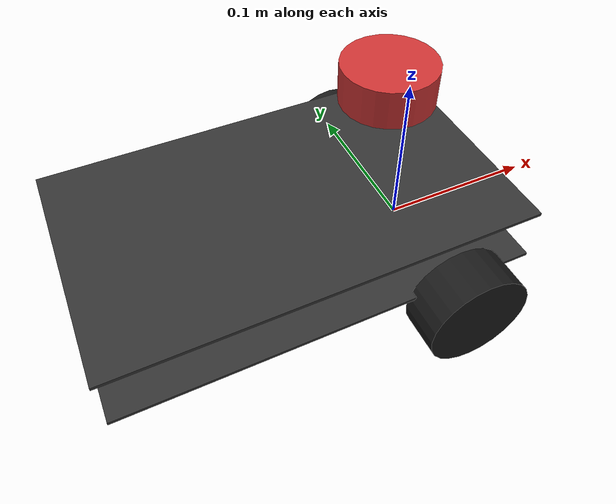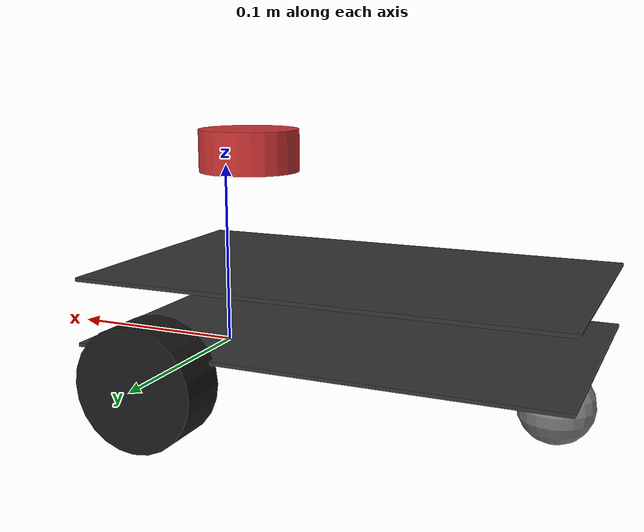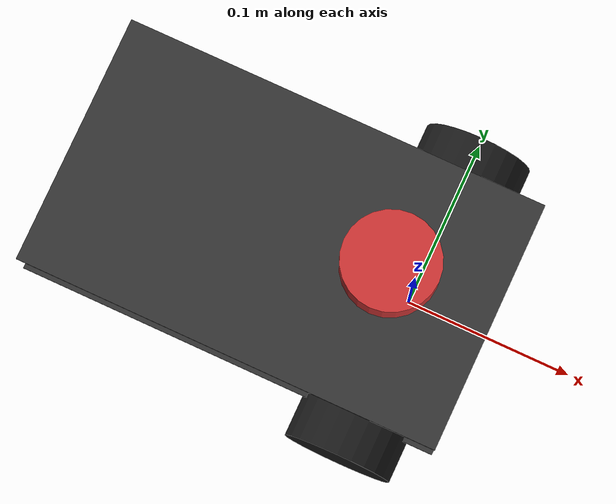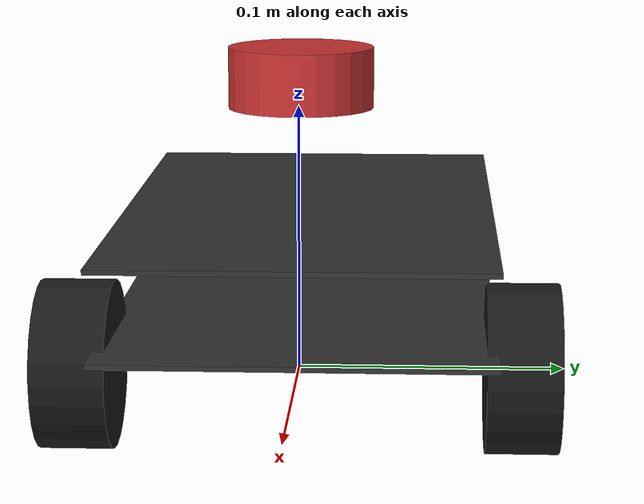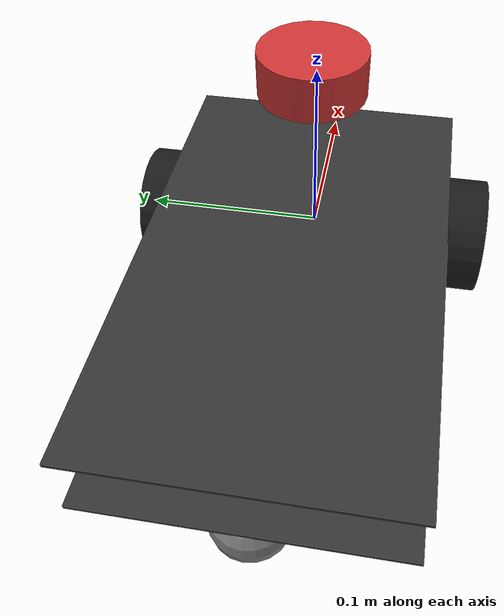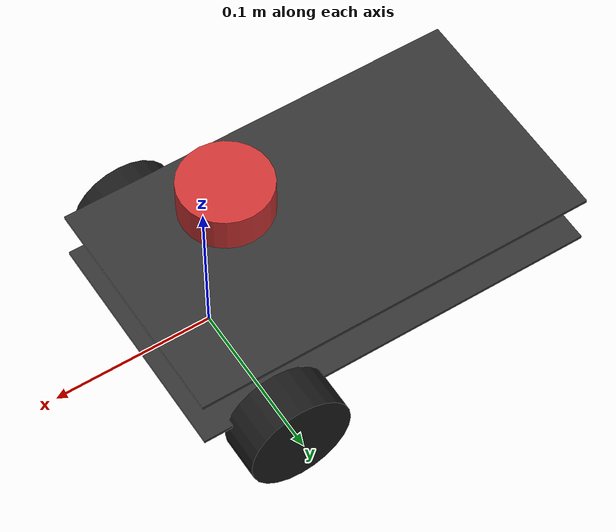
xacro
<?xml version="1.0"?>
<robot xmlns:xacro="http://www.ros.org/wiki/xacro" name="gez">

  <!-- =========== MATERIALS =========== -->
  <material name="sasi_renk">
    <color rgba="0.2 0.2 0.2 1.0"/>
  </material>
  <material name="tekerlek_renk">
    <color rgba="0.1 0.1 0.1 1.0"/>
  </material>
  <material name="lidar_renk">
    <color rgba="0.8 0.2 0.2 1.0"/>
  </material>
  <material name="sarhos_renk">
    <color rgba="0.5 0.5 0.5 1.0"/>
  </material>

  <!-- =========== BASE LINK (sanal merkez) =========== -->
  <link name="base_link"/>

  <!-- =========== ALT SASE =========== -->
  <link name="sase1">
    <visual>
      <geometry>
        <box size="0.255 0.150 0.002"/>
      </geometry>
      <material name="sasi_renk"/>
    </visual>
    <collision>
      <geometry>
        <box size="0.255 0.150 0.002"/>
      </geometry>
    </collision>
  </link>
  <joint name="sase1_joint" type="fixed">
    <parent link="base_link"/>
    <child link="sase1"/>
    <origin xyz="-0.0795 0 0.0115" rpy="0 0 0"/>
  </joint>

  <!-- =========== UST SASE =========== -->
  <link name="sase2">
    <visual>
      <geometry>
        <box size="0.255 0.150 0.002"/>
      </geometry>
      <material name="sasi_renk"/>
    </visual>
    <collision>
      <geometry>
        <box size="0.255 0.150 0.002"/>
      </geometry>
    </collision>
  </link>
  <joint name="sase2_joint" type="fixed">
    <parent link="base_link"/>
    <child link="sase2"/>
    <origin xyz="-0.0795 0 0.0465" rpy="0 0 0"/>
  </joint>

  <!-- =========== SOL TEKERLEK =========== -->
  <link name="sol_tekerlek">
    <visual>
      <geometry>
        <cylinder radius="0.0325" length="0.028"/>
      </geometry>
      <material name="tekerlek_renk"/>
      <origin xyz="0 0 0" rpy="1.5708 0 0"/>
    </visual>
    <collision>
      <geometry>
        <cylinder radius="0.0325" length="0.028"/>
      </geometry>
      <origin xyz="0 0 0" rpy="1.5708 0 0"/>
    </collision>
  </link>
  <joint name="sol_tekerlek_joint" type="continuous">
    <parent link="base_link"/>
    <child link="sol_tekerlek"/>
    <origin xyz="0 0.0845 0" rpy="0 0 0"/>
    <axis xyz="0 1 0"/>
  </joint>

  <!-- =========== SAG TEKERLEK =========== -->
  <link name="sag_tekerlek">
    <visual>
      <geometry>
        <cylinder radius="0.0325" length="0.028"/>
      </geometry>
      <material name="tekerlek_renk"/>
      <origin xyz="0 0 0" rpy="1.5708 0 0"/>
    </visual>
    <collision>
      <geometry>
        <cylinder radius="0.0325" length="0.028"/>
      </geometry>
      <origin xyz="0 0 0" rpy="1.5708 0 0"/>
    </collision>
  </link>
  <joint name="sag_tekerlek_joint" type="continuous">
    <parent link="base_link"/>
    <child link="sag_tekerlek"/>
    <origin xyz="0 -0.0845 0" rpy="0 0 0"/>
    <axis xyz="0 1 0"/>
  </joint>

  <!-- =========== SARHOS TEKERLEK =========== -->
  <link name="sarhos_tekerlek">
    <visual>
      <geometry>
        <sphere radius="0.020"/>
      </geometry>
      <material name="sarhos_renk"/>
    </visual>
    <collision>
      <geometry>
        <sphere radius="0.020"/>
      </geometry>
    </collision>
  </link>
  <joint name="sarhos_joint" type="fixed">
    <parent link="base_link"/>
    <child link="sarhos_tekerlek"/>
    <origin xyz="-0.187 0 -0.0125" rpy="0 0 0"/>
  </joint>

  <!-- =========== LIDAR =========== -->
  <link name="lidar_link">
    <visual>
      <geometry>
        <cylinder radius="0.0275" length="0.023"/>
      </geometry>
      <material name="lidar_renk"/>
    </visual>
    <collision>
      <geometry>
        <cylinder radius="0.0275" length="0.023"/>
      </geometry>
    </collision>
  </link>
  <joint name="lidar_joint" type="fixed">
    <parent link="base_link"/>
    <child link="lidar_link"/>
    <origin xyz="-0.0148 0 0.1088" rpy="0 0 0"/>
  </joint>

</robot>
